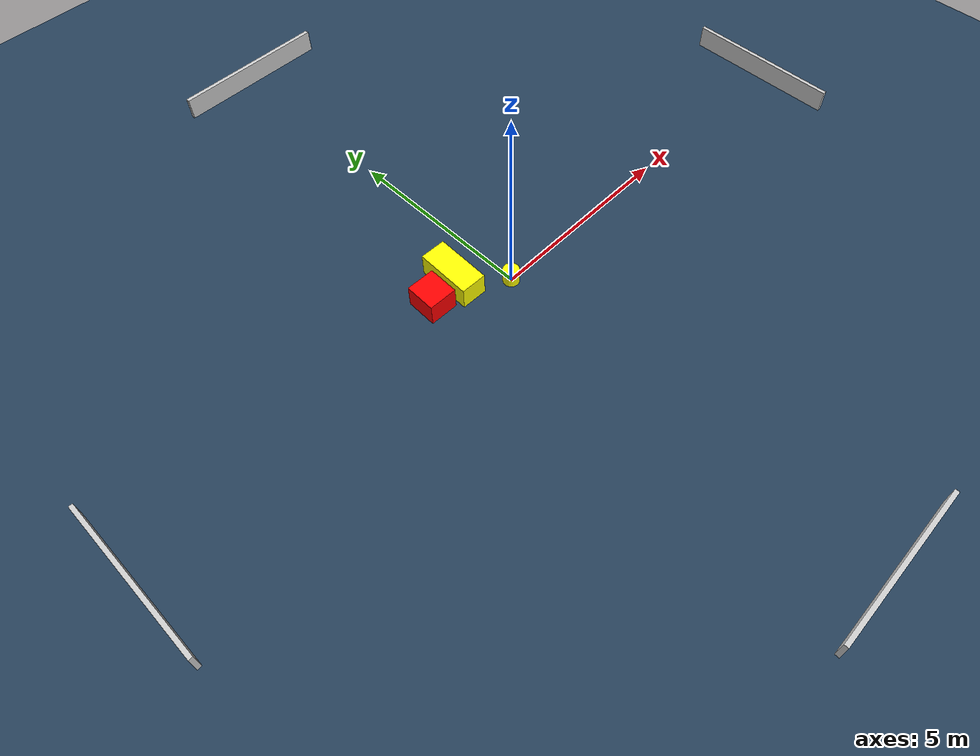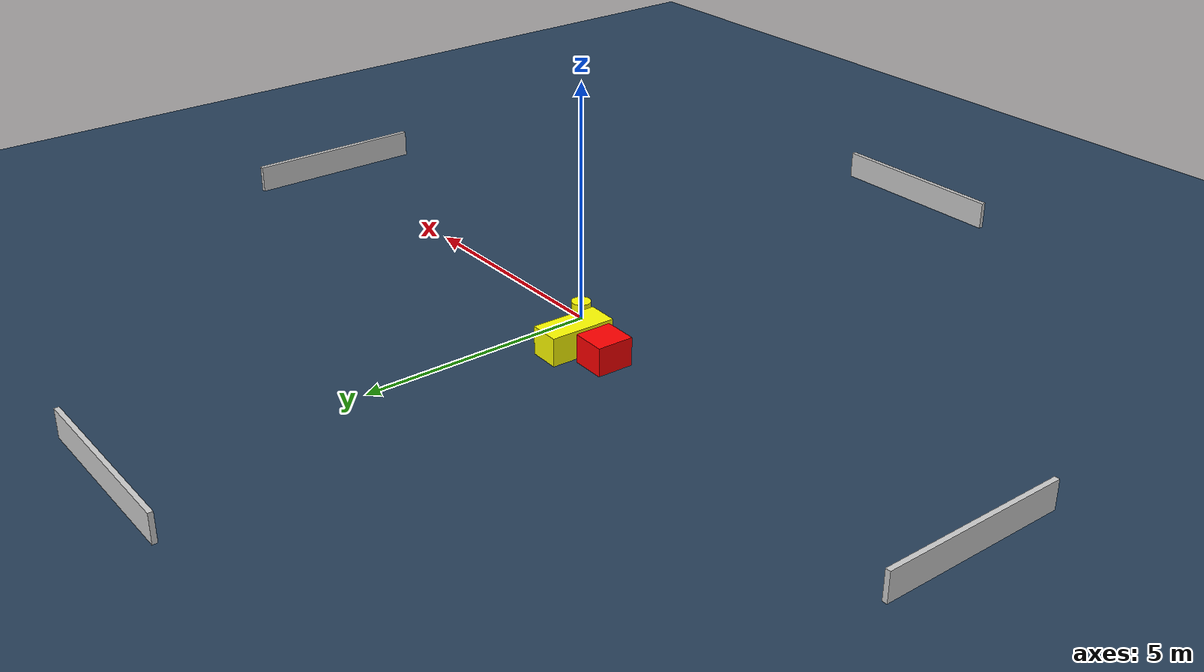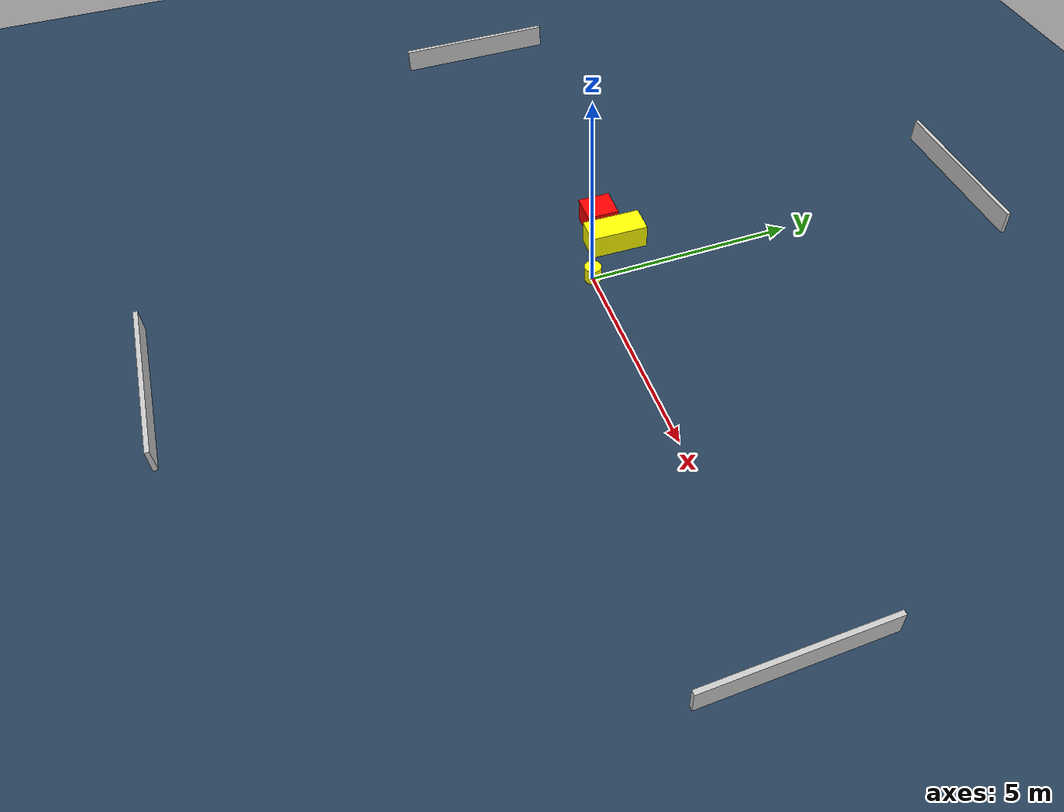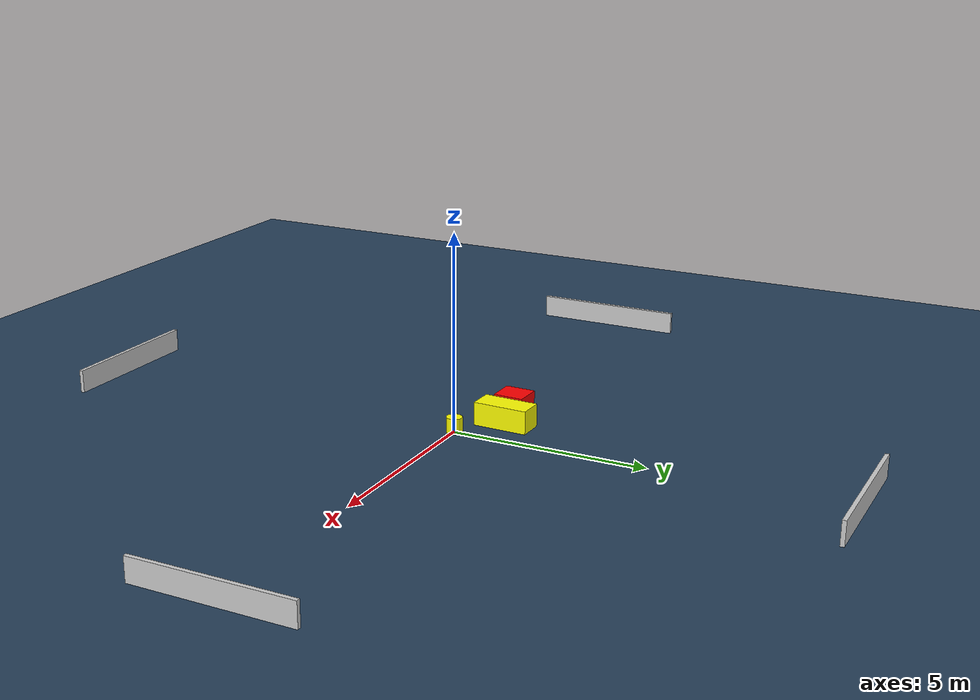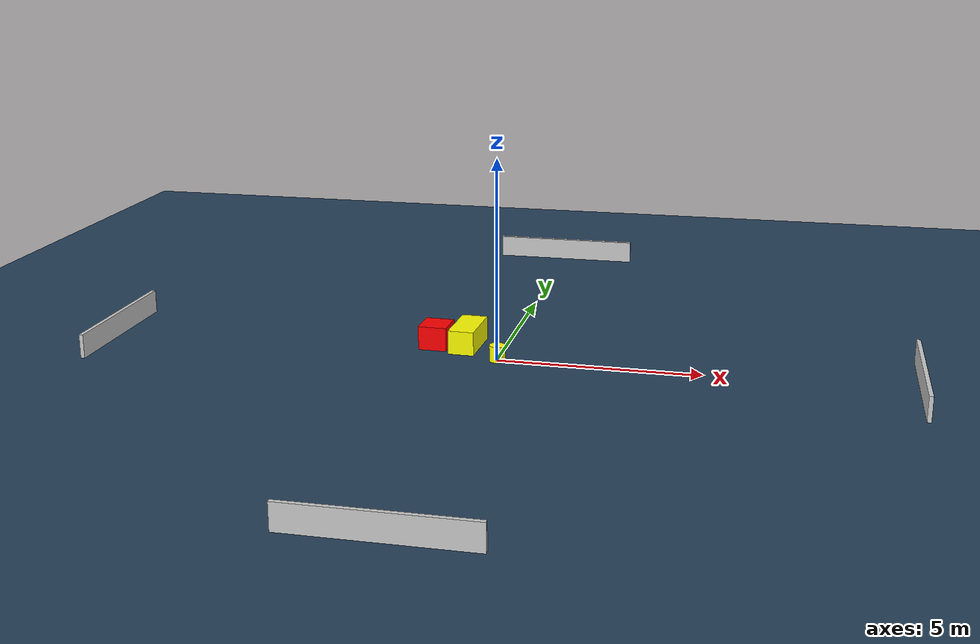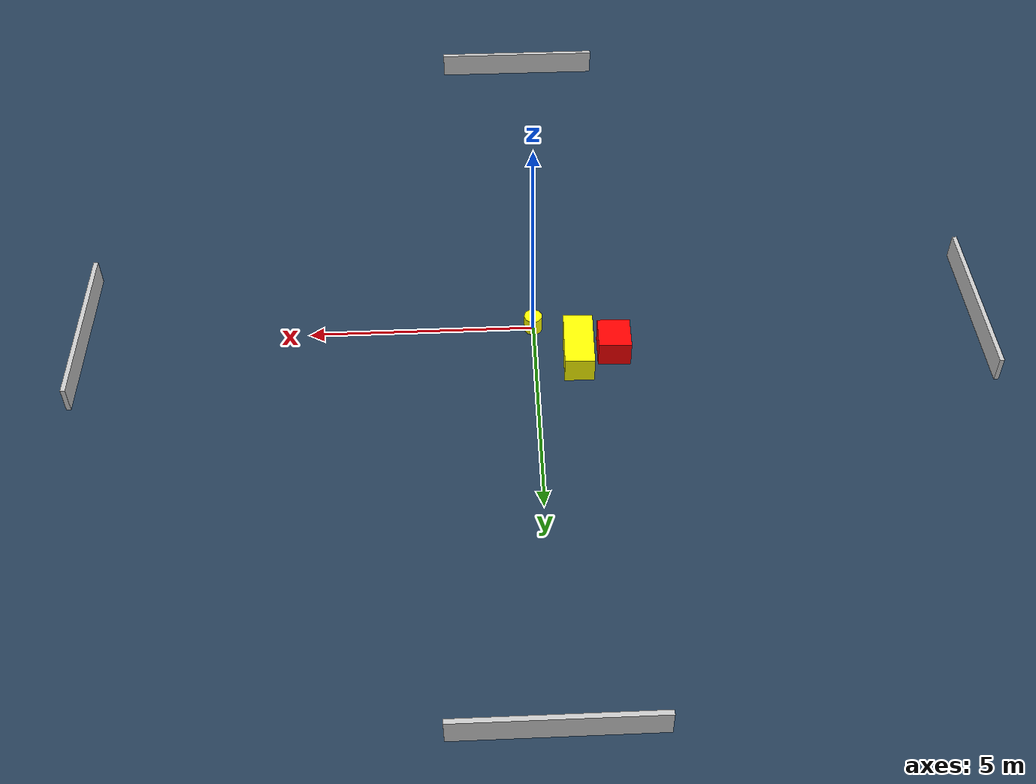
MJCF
<?xml version="1.0" ?>
<mujoco model="generated_environment">
  <option timestep="0.01" integrator="RK4" cone="elliptic"/>
  <default>
    <geom density="1"/>
  </default>
  <asset>
    <texture builtin="gradient" height="3072" name="skybox" rgb1="0.3 0.5 0.7" rgb2="0 0 0" type="skybox" width="512"/>
    <texture builtin="checker" height="300" name="groundplane" rgb1="0.2 0.3 0.4" rgb2="0.1 0.2 0.3" type="2d" width="300"/>
    <material name="groundplane" reflectance="0.2" texrepeat="5 5" texture="groundplane"/>
  </asset>
  <worldbody>
    <light dir="0 0 -1" directional="true" pos="0 0 1.5"/>
    <geom condim="3" friction="0.5 0.005 0.001" material="groundplane" name="floor" pos="0 0 0" size="0 0 0.05" type="plane"/>
    <body name="walls">
      <geom name="wall_1" condim="4" pos="-10.0 0.0 0.3" rgba="0.800000011920929 0.800000011920929 0.800000011920929 1.0" size="0.05 2.0 0.3" type="box"/>
      <geom name="wall_2" condim="4" pos="10.0 0.0 0.3" rgba="0.800000011920929 0.800000011920929 0.800000011920929 1.0" size="0.05 2.0 0.3" type="box"/>
      <geom name="wall_3" condim="4" pos="0.0 -10.0 0.3" rgba="0.800000011920929 0.800000011920929 0.800000011920929 1.0" size="2.0 0.05 0.3" type="box"/>
      <geom name="wall_4" condim="4" pos="0.0 10.0 0.3" rgba="0.800000011920929 0.800000011920929 0.800000011920929 1.0" size="2.0 0.05 0.3" type="box"/>
    </body>
    <body name="robot">
      <joint name="joint_x" type="slide" pos="0 0 0" axis="1 0 0"/>
      <joint name="joint_y" type="slide" pos="0 0 0" axis="0 1 0"/>
      <geom name="robot" type="cylinder" pos="0.0 0.0 0.2" size="0.2 0.2 0.0" mass="5.0" friction="1.0 0.005 0.0001" condim="4" rgba="1.0 1.0 0.0 1.0"/>
    </body>
    <body name="obstacle_1_movable">
      <geom name="obstacle_1_movable" condim="4" pos="-0.9586034759524068 0.9216666589953866 0.3" euler="0 0 88.37684076828506" friction="0.0 0.005 0.001" rgba="1.0 1.0 0.0 1.0" size="0.7029677773143124 0.32498367311315574 0.3" type="box" mass="0.1"/>
      <joint type="free"/>
    </body>
    <body name="obstacle_2_static">
      <geom name="obstacle_2_static" condim="4" pos="-1.7466494356206144 0.7923733274318878 0.3" euler="0 0 88.60196430826602" friction="0.0 0.005 0.001" rgba="1.0 0.0 0.0 1.0" size="0.3880641461206034 0.35791072623425463 0.3" type="box"/>
    </body>
  </worldbody>
  <actuator>
    <motor name="actuator_x" joint="joint_x" gear="1" ctrlrange="-1 1"/>
    <motor name="actuator_y" joint="joint_y" gear="1" ctrlrange="-1 1"/>
  </actuator>
</mujoco>
